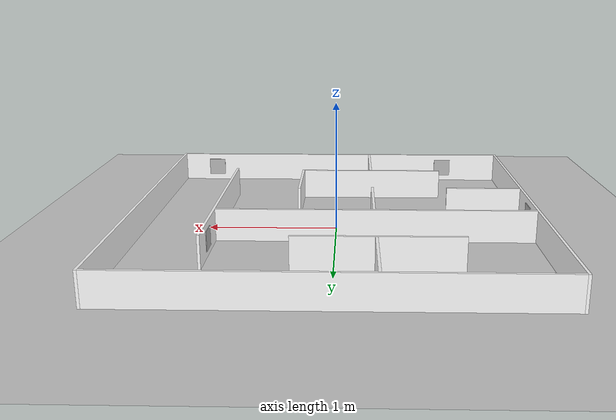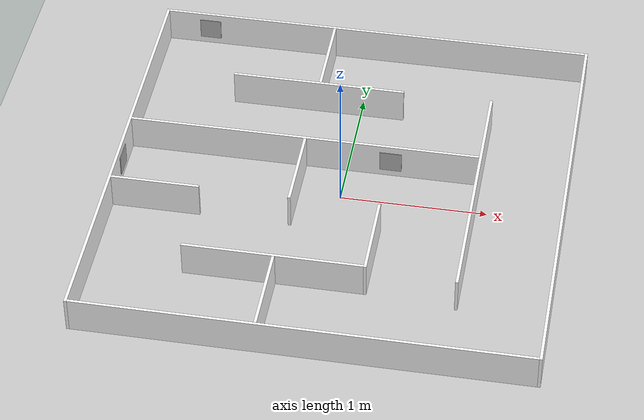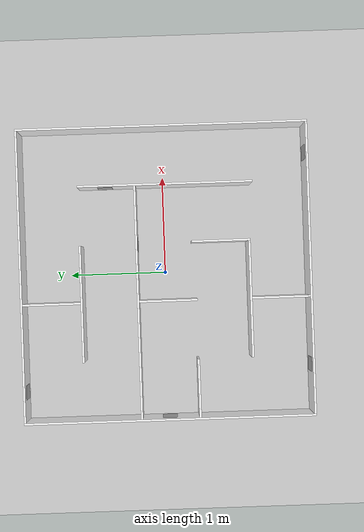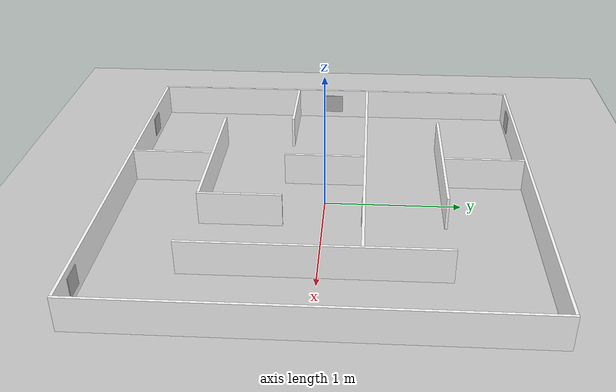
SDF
<sdf version="1.7">
 <world name="default">
  <audio><device>default</device></audio>
  <atmosphere type="adiabatic"/>
  <gravity>0 0 -9.8</gravity>
  <include><uri>model://aruco_4x4_50_0</uri><pose>0.9 0.6 0.125 0.0 0.0 0.0</pose></include>
  <include><uri>model://aruco_4x4_50_1</uri><pose>1.2 -1.48 0.125 0.0 0.0 -1.57</pose></include>
  <include><uri>model://aruco_4x4_50_2</uri><pose>0.3 0.28 0.125 0.0 0.0 1.57</pose></include>
  <include><uri>model://aruco_4x4_50_3</uri><pose>-1.5 0.0 0.125 0.0 0.0 3.14</pose></include>
  <include><uri>model://aruco_4x4_50_4</uri><pose>-1.0 -1.48 0.125 0.0 0.0 -1.57</pose></include>
  <include><uri>model://aruco_4x4_50_5</uri><pose>-1.2 1.48 0.125 0.0 0.0 1.57</pose></include>
  <light name="sun" type="directional">
   <pose>0 0 3 0 0 0</pose>
   <diffuse>0.8 0.8 0.8 1</diffuse>
   <specular>0.2 0.2 0.2 1</specular>
   <attenuation>
    <range>1000</range>
    <constant>0.9</constant>
    <linear>0.01</linear>
    <quadratic>0.001</quadratic>
   </attenuation>
   <direction>-2.0 -1.0 -2.0</direction>
   <spot><inner_angle>0</inner_angle><outer_angle>0</outer_angle><falloff>0</falloff></spot>
  </light>
  <magnetic_field>6e-06 2.3e-05 -4.2e-05</magnetic_field>
  <physics type="ode">
   <max_step_size>0.001</max_step_size>
   <real_time_factor>1</real_time_factor>
   <real_time_update_rate>1000</real_time_update_rate>
  </physics>
  <plugin filename="gz-sim-physics-system" name="gz::sim::systems::Physics"/>
  <plugin filename="gz-sim-user-commands-system" name="gz::sim::systems::UserCommands"/>
  <plugin filename="gz-sim-scene-broadcaster-system" name="gz::sim::systems::SceneBroadcaster"/>
  <plugin filename="gz-sim-sensors-system" name="gz::sim::systems::Sensors">
   <render_engine>ogre2</render_engine>
  </plugin>
  <scene><ambient>0.4 0.4 0.4 1</ambient><background>0.7 0.7 0.7 1</background><shadows>1</shadows></scene>
  <spherical_coordinates>
   <surface_model>EARTH_WGS84</surface_model>
   <latitude_deg>0</latitude_deg>
   <longitude_deg>0</longitude_deg>
   <elevation>0</elevation>
   <heading_deg>0</heading_deg>
  </spherical_coordinates>
  <model name="ground_plane">
   <static>1</static>
   <link name="link">
    <collision name="collision">
     <geometry><plane><normal>0 0 1</normal><size>100 100</size></plane></geometry>
     <surface><friction><ode><mu>100</mu><mu2>50</mu2></ode></friction></surface>
    </collision>
    <visual name="visual">
     <cast_shadows>0</cast_shadows>
     <geometry><plane><normal>0 0 1</normal><size>100 100</size></plane></geometry>
     <material>
      <script><uri>file://media/materials/scripts/gazebo.material</uri><name>Gazebo/Grey</name></script>
     </material>
    </visual>
   </link>
  </model>
  <model name="walls">
   <link name="Wall_0">
    <collision name="Wall_0_Collision">
     <geometry><box><size>3 0.02 0.25</size></box></geometry>
     <pose>0 0 0.125 0 0 0</pose>
    </collision>
    <visual name="Wall_0_Visual">
     <pose>0 0 0.125 0 0 0</pose>
     <geometry><box><size>3 0.02 0.25</size></box></geometry>
     <material>
      <ambient>1 1 1 1</ambient>
      <diffuse>1 1 1 1</diffuse>
      <specular>1 1 1 1</specular>
      <pbr>
       <metal>
        <albedo_map>model://materials/wood.jpg</albedo_map>
        <normal_map>model://materials/wood.jpg</normal_map>
       </metal>
      </pbr>
     </material>
     <meta><layer>0</layer></meta>
    </visual>
    <pose>-0 1.49 0 0 -0 0</pose>
   </link>
   <link name="Wall_1">
    <collision name="Wall_1_Collision">
     <geometry><box><size>3 0.02 0.25</size></box></geometry>
     <pose>0 0 0.125 0 0 0</pose>
    </collision>
    <visual name="Wall_1_Visual">
     <pose>0 0 0.125 0 0 0</pose>
     <geometry><box><size>3 0.02 0.25</size></box></geometry>
     <material>
      <ambient>1 1 1 1</ambient>
      <diffuse>1 1 1 1</diffuse>
      <specular>1 1 1 1</specular>
      <pbr>
       <metal>
        <albedo_map>model://materials/wood.jpg</albedo_map>
        <normal_map>model://materials/wood.jpg</normal_map>
       </metal>
      </pbr>
     </material>
     <meta><layer>0</layer></meta>
    </visual>
    <pose>1.51 0 0 0 -0 -1.5708</pose>
   </link>
   <link name="Wall_10">
    <collision name="Wall_10_Collision">
     <geometry><box><size>0.6 0.02 0.25</size></box></geometry>
     <pose>0 0 0.125 0 0 0</pose>
    </collision>
    <visual name="Wall_10_Visual">
     <pose>0 0 0.125 0 0 0</pose>
     <geometry><box><size>0.6 0.02 0.25</size></box></geometry>
     <material>
      <ambient>1 1 1 1</ambient>
      <diffuse>1 1 1 1</diffuse>
      <specular>1 1 1 1</specular>
      <pbr>
       <metal>
        <albedo_map>model://materials/wood.jpg</albedo_map>
        <normal_map>model://materials/wood.jpg</normal_map>
       </metal>
      </pbr>
     </material>
     <meta><layer>0</layer></meta>
    </visual>
    <pose>-0.29 -1.18 0 0 -0 1.5708</pose>
   </link>
   <link name="Wall_11">
    <collision name="Wall_11_Collision">
     <geometry><box><size>1.2 0.02 0.25</size></box></geometry>
     <pose>0 0 0.125 0 0 0</pose>
    </collision>
    <visual name="Wall_11_Visual">
     <pose>0 0 0.125 0 0 0</pose>
     <geometry><box><size>1.2 0.02 0.25</size></box></geometry>
     <material>
      <ambient>1 1 1 1</ambient>
      <diffuse>1 1 1 1</diffuse>
      <specular>1 1 1 1</specular>
      <pbr>
       <metal>
        <albedo_map>model://materials/wood.jpg</albedo_map>
        <normal_map>model://materials/wood.jpg</normal_map>
       </metal>
      </pbr>
     </material>
     <meta><layer>0</layer></meta>
    </visual>
    <pose>-0.3 -0.87 0 0 -0 0</pose>
   </link>
   <link name="Wall_12">
    <collision name="Wall_12_Collision">
     <geometry><box><size>0.6 0.02 0.25</size></box></geometry>
     <pose>0 0 0.125 0 0 0</pose>
    </collision>
    <visual name="Wall_12_Visual">
     <pose>0 0 0.125 0 0 0</pose>
     <geometry><box><size>0.6 0.02 0.25</size></box></geometry>
     <material>
      <ambient>1 1 1 1</ambient>
      <diffuse>1 1 1 1</diffuse>
      <specular>1 1 1 1</specular>
      <pbr>
       <metal>
        <albedo_map>model://materials/wood.jpg</albedo_map>
        <normal_map>model://materials/wood.jpg</normal_map>
       </metal>
      </pbr>
     </material>
     <meta><layer>0</layer></meta>
    </visual>
    <pose>0.31 -0.58 0 0 -0 -1.5708</pose>
   </link>
   <link name="Wall_2">
    <collision name="Wall_2_Collision">
     <geometry><box><size>3 0.02 0.25</size></box></geometry>
     <pose>0 0 0.125 0 0 0</pose>
    </collision>
    <visual name="Wall_2_Visual">
     <pose>0 0 0.125 0 0 0</pose>
     <geometry><box><size>3 0.02 0.25</size></box></geometry>
     <material>
      <ambient>1 1 1 1</ambient>
      <diffuse>1 1 1 1</diffuse>
      <specular>1 1 1 1</specular>
      <pbr>
       <metal>
        <albedo_map>model://materials/wood.jpg</albedo_map>
        <normal_map>model://materials/wood.jpg</normal_map>
       </metal>
      </pbr>
     </material>
     <meta><layer>0</layer></meta>
    </visual>
    <pose>-0 -1.49 0 0 -0 3.14159</pose>
   </link>
   <link name="Wall_3">
    <collision name="Wall_3_Collision">
     <geometry><box><size>3 0.02 0.25</size></box></geometry>
     <pose>0 0 0.125 0 0 0</pose>
    </collision>
    <visual name="Wall_3_Visual">
     <pose>0 0 0.125 0 0 0</pose>
     <geometry><box><size>3 0.02 0.25</size></box></geometry>
     <material>
      <ambient>1 1 1 1</ambient>
      <diffuse>1 1 1 1</diffuse>
      <specular>1 1 1 1</specular>
      <pbr>
       <metal>
        <albedo_map>model://materials/wood.jpg</albedo_map>
        <normal_map>model://materials/wood.jpg</normal_map>
       </metal>
      </pbr>
     </material>
     <meta><layer>0</layer></meta>
    </visual>
    <pose>-1.51 0 0 0 -0 1.5708</pose>
   </link>
   <link name="Wall_4">
    <collision name="Wall_4_Collision">
     <geometry><box><size>0.6 0.02 0.25</size></box></geometry>
     <pose>0 0 0.125 0 0 0</pose>
    </collision>
    <visual name="Wall_4_Visual">
     <pose>0 0 0.125 0 0 0</pose>
     <geometry><box><size>0.6 0.02 0.25</size></box></geometry>
     <material>
      <ambient>1 1 1 1</ambient>
      <diffuse>1 1 1 1</diffuse>
      <specular>1 1 1 1</specular>
      <pbr>
       <metal>
        <albedo_map>model://materials/wood.jpg</albedo_map>
        <normal_map>model://materials/wood.jpg</normal_map>
       </metal>
      </pbr>
     </material>
     <meta><layer>0</layer></meta>
    </visual>
    <pose>-0.29 1.18 0 0 -0 -1.5708</pose>
   </link>
   <link name="Wall_5">
    <collision name="Wall_5_Collision">
     <geometry><box><size>1.2 0.02 0.25</size></box></geometry>
     <pose>0 0 0.125 0 0 0</pose>
    </collision>
    <visual name="Wall_5_Visual">
     <pose>0 0 0.125 0 0 0</pose>
     <geometry><box><size>1.2 0.02 0.25</size></box></geometry>
     <material>
      <ambient>1 1 1 1</ambient>
      <diffuse>1 1 1 1</diffuse>
      <specular>1 1 1 1</specular>
      <pbr>
       <metal>
        <albedo_map>model://materials/wood.jpg</albedo_map>
        <normal_map>model://materials/wood.jpg</normal_map>
       </metal>
      </pbr>
     </material>
     <meta><layer>0</layer></meta>
    </visual>
    <pose>-0.3 0.87 0 0 -0 0</pose>
   </link>
   <link name="Wall_6">
    <collision name="Wall_6_Collision">
     <geometry><box><size>2.4 0.02 0.25</size></box></geometry>
     <pose>0 0 0.125 0 0 0</pose>
    </collision>
    <visual name="Wall_6_Visual">
     <pose>0 0 0.125 0 0 0</pose>
     <geometry><box><size>2.4 0.02 0.25</size></box></geometry>
     <material>
      <ambient>1 1 1 1</ambient>
      <diffuse>1 1 1 1</diffuse>
      <specular>1 1 1 1</specular>
      <pbr>
       <metal>
        <albedo_map>model://materials/wood.jpg</albedo_map>
        <normal_map>model://materials/wood.jpg</normal_map>
       </metal>
      </pbr>
     </material>
     <meta><layer>0</layer></meta>
    </visual>
    <pose>-0.3 0.29 0 0 -0 0</pose>
   </link>
   <link name="Wall_7">
    <collision name="Wall_7_Collision">
     <geometry><box><size>1.8 0.02 0.25</size></box></geometry>
     <pose>0 0 0.125 0 0 0</pose>
    </collision>
    <visual name="Wall_7_Visual">
     <pose>0 0 0.125 0 0 0</pose>
     <geometry><box><size>1.8 0.02 0.25</size></box></geometry>
     <material>
      <ambient>1 1 1 1</ambient>
      <diffuse>1 1 1 1</diffuse>
      <specular>1 1 1 1</specular>
      <pbr>
       <metal>
        <albedo_map>model://materials/wood.jpg</albedo_map>
        <normal_map>model://materials/wood.jpg</normal_map>
       </metal>
      </pbr>
     </material>
     <meta><layer>0</layer></meta>
    </visual>
    <pose>0.91 -0.02 0 0 -0 -1.5708</pose>
   </link>
   <link name="Wall_8">
    <collision name="Wall_8_Collision">
     <geometry><box><size>0.6 0.02 0.25</size></box></geometry>
     <pose>0 0 0.125 0 0 0</pose>
    </collision>
    <visual name="Wall_8_Visual">
     <pose>0 0 0.125 0 0 0</pose>
     <geometry><box><size>0.6 0.02 0.25</size></box></geometry>
     <material>
      <ambient>1 1 1 1</ambient>
      <diffuse>1 1 1 1</diffuse>
      <specular>1 1 1 1</specular>
      <pbr>
       <metal>
        <albedo_map>model://materials/wood.jpg</albedo_map>
        <normal_map>model://materials/wood.jpg</normal_map>
       </metal>
      </pbr>
     </material>
     <meta><layer>0</layer></meta>
    </visual>
    <pose>-0.29 -0.02 0 0 -0 -1.5708</pose>
   </link>
   <link name="Wall_9">
    <collision name="Wall_9_Collision">
     <geometry><box><size>0.6 0.02 0.25</size></box></geometry>
     <pose>0 0 0.125 0 0 0</pose>
    </collision>
    <visual name="Wall_9_Visual">
     <pose>0 0 0.125 0 0 0</pose>
     <geometry><box><size>0.6 0.02 0.25</size></box></geometry>
     <material>
      <ambient>1 1 1 1</ambient>
      <diffuse>1 1 1 1</diffuse>
      <specular>1 1 1 1</specular>
      <pbr>
       <metal>
        <albedo_map>model://materials/wood.jpg</albedo_map>
        <normal_map>model://materials/wood.jpg</normal_map>
       </metal>
      </pbr>
     </material>
     <meta><layer>0</layer></meta>
    </visual>
    <pose>-1.2 -0.31 0 0 -0 0</pose>
   </link>
   <static>1</static>
  </model>
 </world>
</sdf>

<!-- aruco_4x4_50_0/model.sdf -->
<sdf version='1.4'>
    <model name='aruco_4x4_50_0'>
    <static>true</static>

        <link name='link0'>
            <pose>0 0 0 0 0 3.1415</pose>

            <visual name='visual'>
                <geometry>
                    <mesh>
                        <uri>./meshes/aruco_4x4_50_0.dae</uri>
                    </mesh>
                </geometry>
            </visual>

            <collision name='collision'>
                <pose>0 0 0 0 0 0</pose>
                <geometry>
                    <box>
                        <size>0.01 0.2 0.2</size>
                    </box>
                </geometry>
            </collision>

        </link>

    </model>

</sdf>

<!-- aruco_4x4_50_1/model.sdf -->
<sdf version='1.4'>
    <model name='aruco_4x4_50_1'>
    <static>true</static>

        <link name='link0'>
            <pose>0 0 0 0 0 3.1415</pose>

            <visual name='visual'>
                <geometry>
                    <mesh>
                        <uri>./meshes/aruco_4x4_50_1.dae</uri>
                    </mesh>
                </geometry>
            </visual>

            <collision name='collision'>
                <pose>0 0 0 0 0 0</pose>
                <geometry>
                    <box>
                        <size>0.01 0.2 0.2</size>
                    </box>
                </geometry>
            </collision>

        </link>

    </model>

</sdf>

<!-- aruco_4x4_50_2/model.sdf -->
<sdf version='1.4'>
    <model name='aruco_4x4_50_2'>
    <static>true</static>

        <link name='link0'>
            <pose>0 0 0 0 0 3.1415</pose>

            <visual name='visual'>
                <geometry>
                    <mesh>
                        <uri>./meshes/aruco_4x4_50_2.dae</uri>
                    </mesh>
                </geometry>
            </visual>

            <collision name='collision'>
                <pose>0 0 0 0 0 0</pose>
                <geometry>
                    <box>
                        <size>0.01 0.2 0.2</size>
                    </box>
                </geometry>
            </collision>

        </link>

    </model>

</sdf>

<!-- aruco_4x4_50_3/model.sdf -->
<sdf version='1.4'>
    <model name='aruco_4x4_50_3'>
    <static>true</static>

        <link name='link0'>
            <pose>0 0 0 0 0 3.1415</pose>

            <visual name='visual'>
                <geometry>
                    <mesh>
                        <uri>./meshes/aruco_4x4_50_3.dae</uri>
                    </mesh>
                </geometry>
            </visual>

            <collision name='collision'>
                <pose>0 0 0 0 0 0</pose>
                <geometry>
                    <box>
                        <size>0.01 0.2 0.2</size>
                    </box>
                </geometry>
            </collision>

        </link>

    </model>

</sdf>

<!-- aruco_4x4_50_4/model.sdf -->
<sdf version='1.4'>
    <model name='aruco_4x4_50_4'>
    <static>true</static>

        <link name='link0'>
            <pose>0 0 0 0 0 3.1415</pose>

            <visual name='visual'>
                <geometry>
                    <mesh>
                        <uri>./meshes/aruco_4x4_50_4.dae</uri>
                    </mesh>
                </geometry>
            </visual>

            <collision name='collision'>
                <pose>0 0 0 0 0 0</pose>
                <geometry>
                    <box>
                        <size>0.01 0.2 0.2</size>
                    </box>
                </geometry>
            </collision>

        </link>

    </model>

</sdf>

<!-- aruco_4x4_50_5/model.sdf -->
<sdf version='1.4'>
    <model name='aruco_4x4_50_5'>
    <static>true</static>

        <link name='link0'>
            <pose>0 0 0 0 0 3.1415</pose>

            <visual name='visual'>
                <geometry>
                    <mesh>
                        <uri>./meshes/aruco_4x4_50_5.dae</uri>
                    </mesh>
                </geometry>
            </visual>

            <collision name='collision'>
                <pose>0 0 0 0 0 0</pose>
                <geometry>
                    <box>
                        <size>0.01 0.2 0.2</size>
                    </box>
                </geometry>
            </collision>

        </link>

    </model>

</sdf>
